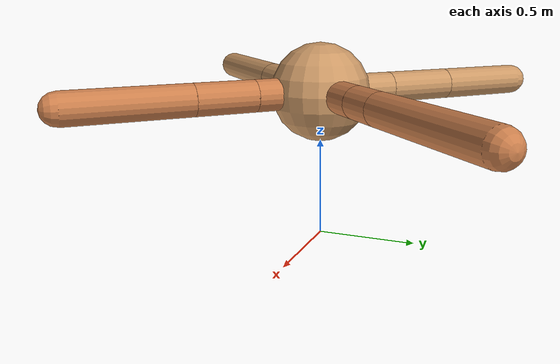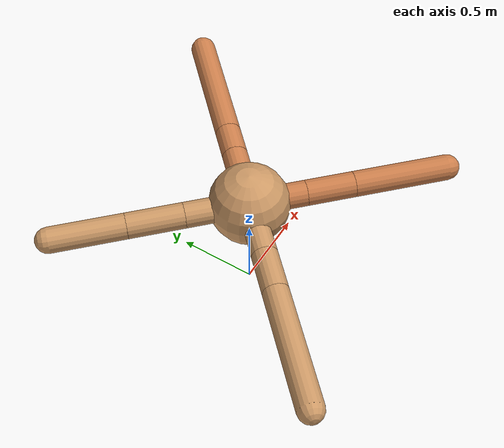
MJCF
<mujoco model="ant">
  <compiler angle="degree" coordinate="local" inertiafromgeom="true" />
  <option integrator="RK4" timestep="0.01" />
  <custom>
    <numeric data="0.0 0.0 0.55 1.0 0.0 0.0 0.0 0.0 1.0 0.0 -1.0 0.0 -1.0 0.0 1.0" name="init_qpos" />
  </custom>
  <default>
    <joint armature="1" damping="1" limited="true" />
    <geom conaffinity="0" condim="3" density="5.0" friction="1.5 0.1 0.1" margin="0.01" rgba="0.8 0.6 0.4 1" />
  </default>
  <worldbody>
    <body name="torso" pos="0 0 0.75">
      <geom name="torso_geom" pos="0 0 0" size="0.25" type="sphere" />

      <body name="front_left_leg" pos="0 0 0">
        <geom fromto="0.0 0.0 0.0 0.27894336292135186 0.27894336292135186 0.0" name="aux_1_geom" size="0.08" type="capsule" rgba=".8 .5 .3 1" />
        <body name="aux_1" pos="0.27894336292135186 0.27894336292135186 0.0">
          <joint axis="0 0 1" name="hip_1" pos="0.0 0.0 0.0" range="-40 40" type="hinge" />
          <geom fromto="0.0 0.0 0.0 0.14075978675837586 0.14075978675837586 0.0" name="left_leg_geom" size="0.08" type="capsule" rgba=".8 .5 .3 1" />
          <body pos="0.14075978675837586 0.14075978675837586 0.0" name="front_left_foot">
            <joint axis="-1 1 0" name="ankle_1" pos="0.0 0.0 0.0" range="30 100" type="hinge" />
            <geom fromto="0.0 0.0 0.0 0.5532703275392786 0.5532703275392786 0.0" name="left_ankle_geom" size="0.08" type="capsule" rgba=".8 .5 .3 1" />
          </body>
        </body>
      </body>
      <body name="front_right_leg" pos="0 0 0">
        <geom fromto="0.0 0.0 0.0 -0.2814530999143036 0.2814530999143036 0.0" name="aux_2_geom" size="0.08" type="capsule" />
        <body name="aux_2" pos="-0.2814530999143036 0.2814530999143036 0.0">
          <joint axis="0 0 1" name="hip_2" pos="0.0 0.0 0.0" range="-40 40" type="hinge" />
          <geom fromto="0.0 0.0 0.0 -0.24785875897123485 0.24785875897123485 0.0" name="right_leg_geom" size="0.08" type="capsule" />
          <body pos="-0.24785875897123485 0.24785875897123485 0.0" name="front_right_foot">
            <joint axis="1 1 0" name="ankle_2" pos="0.0 0.0 0.0" range="-100 -30" type="hinge" />
            <geom fromto="0.0 0.0 0.0 -0.32621710358697187 0.32621710358697187 0.0" name="right_ankle_geom" size="0.08" type="capsule" />
          </body>
        </body>
      </body>
      <body name="left_back_leg" pos="0 0 0">
        <geom fromto="0.0 0.0 0.0 -0.2763703393440227 -0.2763703393440227 0.0" name="aux_3_geom" size="0.08" type="capsule" />
        <body name="aux_3" pos="-0.2763703393440227 -0.2763703393440227 0.0">
          <joint axis="0 0 1" name="hip_3" pos="0.0 0.0 0.0" range="-40 40" type="hinge" />
          <geom fromto="0.0 0.0 0.0 -0.18577228854841127 -0.18577228854841127 0.0" name="back_leg_geom" size="0.08" type="capsule" />
          <body pos="-0.18577228854841127 -0.18577228854841127 0.0" name="left_back_foot">
            <joint axis="-1 1 0" name="ankle_3" pos="0.0 0.0 0.0" range="-100 -30" type="hinge" />
            <geom fromto="0.0 0.0 0.0 -0.5377240853236994 -0.5377240853236994 0.0" name="third_ankle_geom" size="0.08" type="capsule" />
          </body>
        </body>
      </body>
      <body name="right_back_leg" pos="0 0 0">
        <geom fromto="0.0 0.0 0.0 0.2482492163166572 -0.2482492163166572 0.0" name="aux_4_geom" size="0.08" type="capsule" rgba=".8 .5 .3 1" />
        <body name="aux_4" pos="0.2482492163166572 -0.2482492163166572 0.0">
          <joint axis="0 0 1" name="hip_4" pos="0.0 0.0 0.0" range="-40 40" type="hinge" />
          <geom fromto="0.0 0.0 0.0 0.21346361561894753 -0.21346361561894753 0.0" name="rightback_leg_geom" size="0.08" type="capsule" rgba=".8 .5 .3 1" />
          <body pos="0.21346361561894753 -0.21346361561894753 0.0" name="right_back_foot">
            <joint axis="1 1 0" name="ankle_4" pos="0.0 0.0 0.0" range="30 100" type="hinge" />
            <geom fromto="0.0 0.0 0.0 0.4220310352435867 -0.4220310352435867 0.0" name="fourth_ankle_geom" size="0.08" type="capsule" rgba=".8 .5 .3 1" />
          </body>
        </body>
      </body>
    </body>
  </worldbody>
  <actuator>
    <motor ctrllimited="true" ctrlrange="-1.0 1.0" joint="hip_4" gear="150" />
    <motor ctrllimited="true" ctrlrange="-1.0 1.0" joint="ankle_4" gear="150" />
    <motor ctrllimited="true" ctrlrange="-1.0 1.0" joint="hip_1" gear="150" />
    <motor ctrllimited="true" ctrlrange="-1.0 1.0" joint="ankle_1" gear="150" />
    <motor ctrllimited="true" ctrlrange="-1.0 1.0" joint="hip_2" gear="150" />
    <motor ctrllimited="true" ctrlrange="-1.0 1.0" joint="ankle_2" gear="150" />
    <motor ctrllimited="true" ctrlrange="-1.0 1.0" joint="hip_3" gear="150" />
    <motor ctrllimited="true" ctrlrange="-1.0 1.0" joint="ankle_3" gear="150" />
  </actuator>
</mujoco>
